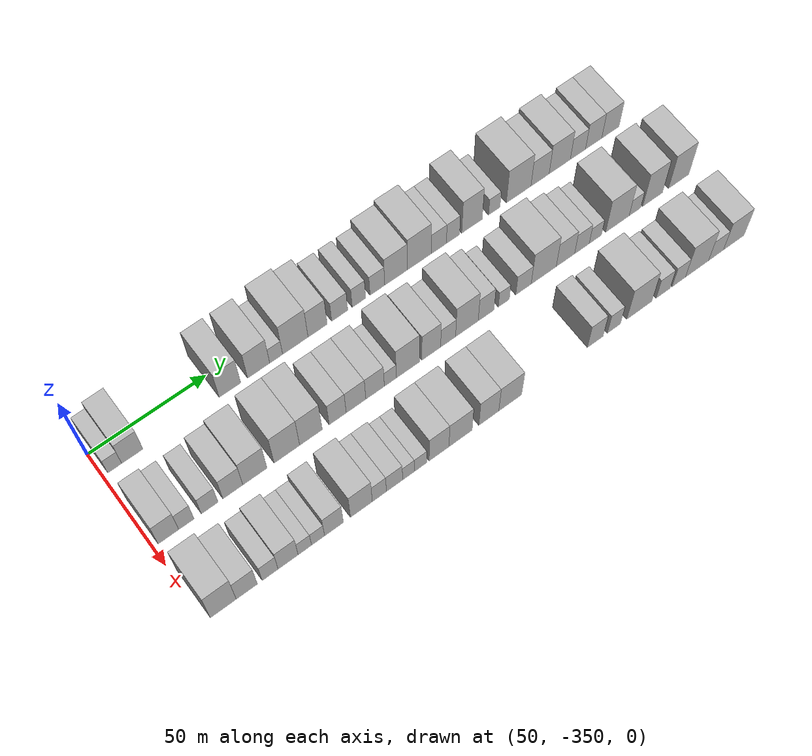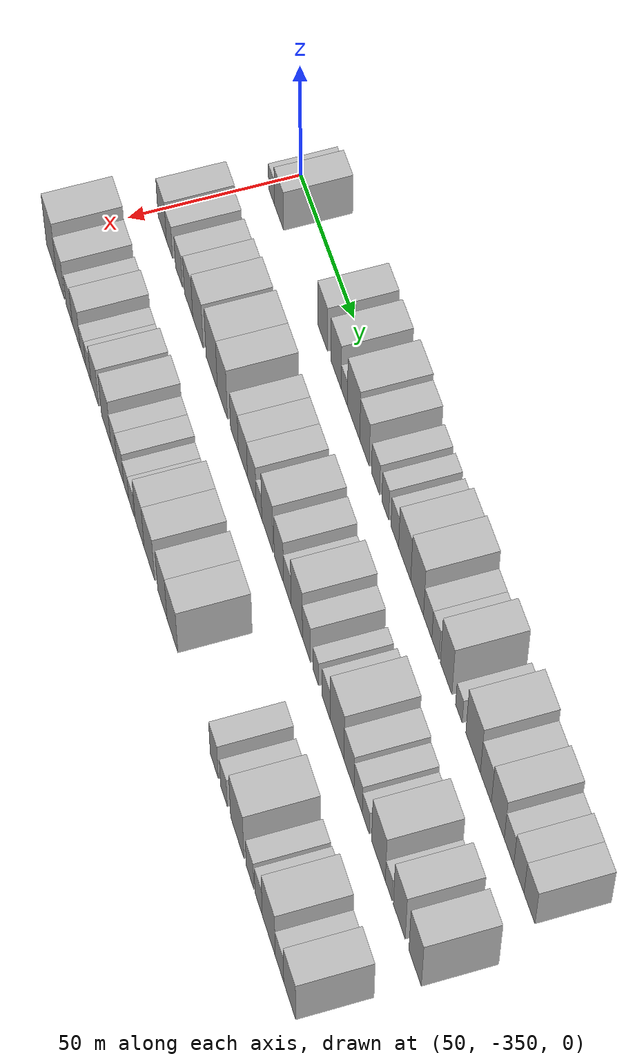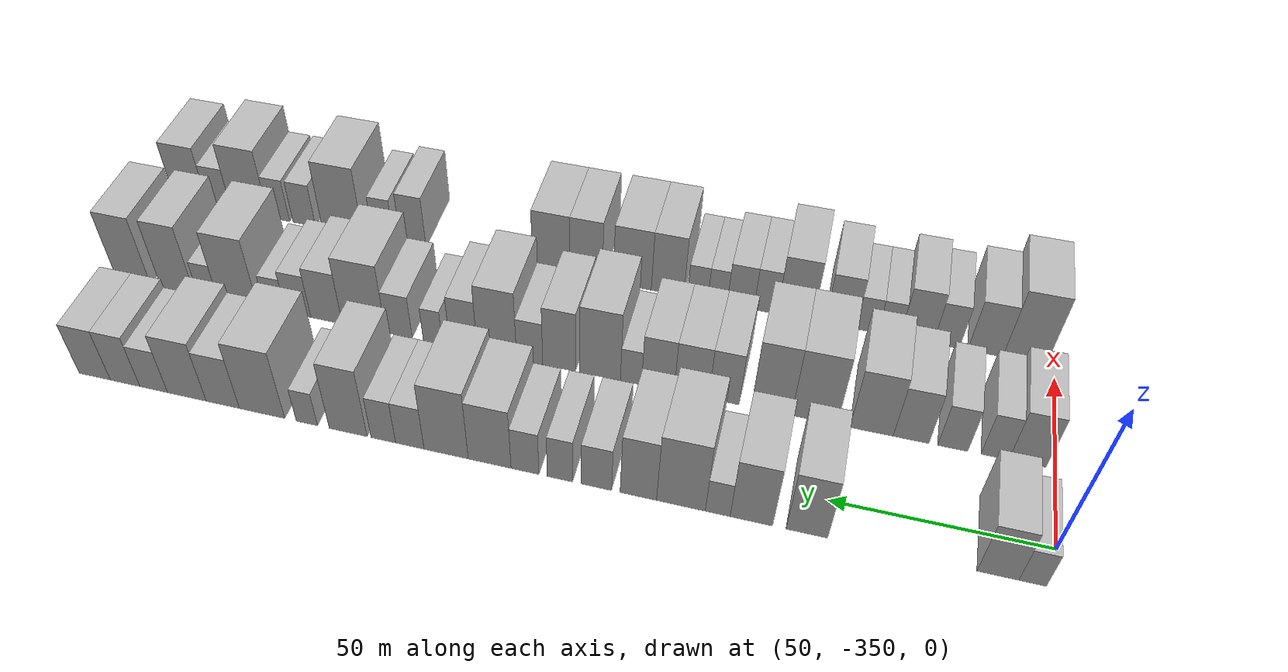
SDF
<sdf version="1.6">
 <world name="default">
  <model name="building_1">
   <static>1</static>
   <pose>50.0000 -345.1191 0 0.000000 0.000000 0.000000</pose>
   <link name="link">
    <pose>0 0 6.00 0 0 0</pose>
    <collision name="collision"><geometry><box><size>20.0000 5.7618 12.0000</size></box></geometry></collision>
    <visual name="visual">
     <cast_shadows>0</cast_shadows>
     <geometry><box><size>20.0000 5.7618 12.0000</size></box></geometry>
     <material>
      <script>
       <uri>model://HANNAS_wall/materials/scripts</uri>
       <uri>model://HANNAS_wall/materials/textures</uri>
       <name>vrc/HANNAS_wall</name>
      </script>
     </material>
    </visual>
   </link>
  </model>
  <model name="building_2">
   <static>1</static>
   <pose>50.0000 -337.8096 0 0.000000 0.000000 0.000000</pose>
   <link name="link">
    <pose>0 0 9.00 0 0 0</pose>
    <collision name="collision"><geometry><box><size>20.0000 8.8573 18.0000</size></box></geometry></collision>
    <visual name="visual">
     <cast_shadows>0</cast_shadows>
     <geometry><box><size>20.0000 8.8573 18.0000</size></box></geometry>
     <material>
      <script>
       <uri>model://HANNAS_wall/materials/scripts</uri>
       <uri>model://HANNAS_wall/materials/textures</uri>
       <name>vrc/HANNAS_wall</name>
      </script>
     </material>
    </visual>
   </link>
  </model>
  <model name="building_3">
   <static>1</static>
   <pose>50.0000 -296.4634 0 0.000000 0.000000 0.000000</pose>
   <link name="link">
    <pose>0 0 10.50 0 0 0</pose>
    <collision name="collision"><geometry><box><size>20.0000 9.2784 21.0000</size></box></geometry></collision>
    <visual name="visual">
     <cast_shadows>0</cast_shadows>
     <geometry><box><size>20.0000 9.2784 21.0000</size></box></geometry>
     <material>
      <script>
       <uri>model://HANNAS_wall/materials/scripts</uri>
       <uri>model://HANNAS_wall/materials/textures</uri>
       <name>vrc/HANNAS_wall</name>
      </script>
     </material>
    </visual>
   </link>
  </model>
  <model name="building_4">
   <static>1</static>
   <pose>50.0000 -284.0095 0 0.000000 0.000000 0.000000</pose>
   <link name="link">
    <pose>0 0 10.50 0 0 0</pose>
    <collision name="collision"><geometry><box><size>20.0000 9.6294 21.0000</size></box></geometry></collision>
    <visual name="visual">
     <cast_shadows>0</cast_shadows>
     <geometry><box><size>20.0000 9.6294 21.0000</size></box></geometry>
     <material>
      <script>
       <uri>model://HANNAS_wall/materials/scripts</uri>
       <uri>model://HANNAS_wall/materials/textures</uri>
       <name>vrc/HANNAS_wall</name>
      </script>
     </material>
    </visual>
   </link>
  </model>
  <model name="building_5">
   <static>1</static>
   <pose>50.0000 -276.3685 0 0.000000 0.000000 0.000000</pose>
   <link name="link">
    <pose>0 0 6.00 0 0 0</pose>
    <collision name="collision"><geometry><box><size>20.0000 5.6524 12.0000</size></box></geometry></collision>
    <visual name="visual">
     <cast_shadows>0</cast_shadows>
     <geometry><box><size>20.0000 5.6524 12.0000</size></box></geometry>
     <material>
      <script>
       <uri>model://HANNAS_wall/materials/scripts</uri>
       <uri>model://HANNAS_wall/materials/textures</uri>
       <name>vrc/HANNAS_wall</name>
      </script>
     </material>
    </visual>
   </link>
  </model>
  <model name="building_6">
   <static>1</static>
   <pose>50.0000 -267.9154 0 0.000000 0.000000 0.000000</pose>
   <link name="link">
    <pose>0 0 12.00 0 0 0</pose>
    <collision name="collision"><geometry><box><size>20.0000 11.2537 24.0000</size></box></geometry></collision>
    <visual name="visual">
     <cast_shadows>0</cast_shadows>
     <geometry><box><size>20.0000 11.2537 24.0000</size></box></geometry>
     <material>
      <script>
       <uri>model://HANNAS_wall/materials/scripts</uri>
       <uri>model://HANNAS_wall/materials/textures</uri>
       <name>vrc/HANNAS_wall</name>
      </script>
     </material>
    </visual>
   </link>
  </model>
  <model name="building_7">
   <static>1</static>
   <pose>50.0000 -258.0364 0 0.000000 0.000000 0.000000</pose>
   <link name="link">
    <pose>0 0 10.50 0 0 0</pose>
    <collision name="collision"><geometry><box><size>20.0000 8.5043 21.0000</size></box></geometry></collision>
    <visual name="visual">
     <cast_shadows>0</cast_shadows>
     <geometry><box><size>20.0000 8.5043 21.0000</size></box></geometry>
     <material>
      <script>
       <uri>model://HANNAS_wall/materials/scripts</uri>
       <uri>model://HANNAS_wall/materials/textures</uri>
       <name>vrc/HANNAS_wall</name>
      </script>
     </material>
    </visual>
   </link>
  </model>
  <model name="building_8">
   <static>1</static>
   <pose>50.0000 -248.1728 0 0.000000 0.000000 0.000000</pose>
   <link name="link">
    <pose>0 0 7.50 0 0 0</pose>
    <collision name="collision"><geometry><box><size>20.0000 7.2229 15.0000</size></box></geometry></collision>
    <visual name="visual">
     <cast_shadows>0</cast_shadows>
     <geometry><box><size>20.0000 7.2229 15.0000</size></box></geometry>
     <material>
      <script>
       <uri>model://HANNAS_wall/materials/scripts</uri>
       <uri>model://HANNAS_wall/materials/textures</uri>
       <name>vrc/HANNAS_wall</name>
      </script>
     </material>
    </visual>
   </link>
  </model>
  <model name="building_9">
   <static>1</static>
   <pose>50.0000 -239.5323 0 0.000000 0.000000 0.000000</pose>
   <link name="link">
    <pose>0 0 7.50 0 0 0</pose>
    <collision name="collision"><geometry><box><size>20.0000 6.0581 15.0000</size></box></geometry></collision>
    <visual name="visual">
     <cast_shadows>0</cast_shadows>
     <geometry><box><size>20.0000 6.0581 15.0000</size></box></geometry>
     <material>
      <script>
       <uri>model://HANNAS_wall/materials/scripts</uri>
       <uri>model://HANNAS_wall/materials/textures</uri>
       <name>vrc/HANNAS_wall</name>
      </script>
     </material>
    </visual>
   </link>
  </model>
  <model name="building_10">
   <static>1</static>
   <pose>50.0000 -231.1441 0 0.000000 0.000000 0.000000</pose>
   <link name="link">
    <pose>0 0 7.50 0 0 0</pose>
    <collision name="collision"><geometry><box><size>20.0000 6.7183 15.0000</size></box></geometry></collision>
    <visual name="visual">
     <cast_shadows>0</cast_shadows>
     <geometry><box><size>20.0000 6.7183 15.0000</size></box></geometry>
     <material>
      <script>
       <uri>model://HANNAS_wall/materials/scripts</uri>
       <uri>model://HANNAS_wall/materials/textures</uri>
       <name>vrc/HANNAS_wall</name>
      </script>
     </material>
    </visual>
   </link>
  </model>
  <model name="building_11">
   <static>1</static>
   <pose>50.0000 -222.5589 0 0.000000 0.000000 0.000000</pose>
   <link name="link">
    <pose>0 0 10.50 0 0 0</pose>
    <collision name="collision"><geometry><box><size>20.0000 10.4522 21.0000</size></box></geometry></collision>
    <visual name="visual">
     <cast_shadows>0</cast_shadows>
     <geometry><box><size>20.0000 10.4522 21.0000</size></box></geometry>
     <material>
      <script>
       <uri>model://HANNAS_wall/materials/scripts</uri>
       <uri>model://HANNAS_wall/materials/textures</uri>
       <name>vrc/HANNAS_wall</name>
      </script>
     </material>
    </visual>
   </link>
  </model>
  <model name="building_12">
   <static>1</static>
   <pose>50.0000 -211.8598 0 0.000000 0.000000 0.000000</pose>
   <link name="link">
    <pose>0 0 12.00 0 0 0</pose>
    <collision name="collision"><geometry><box><size>20.0000 10.9460 24.0000</size></box></geometry></collision>
    <visual name="visual">
     <cast_shadows>0</cast_shadows>
     <geometry><box><size>20.0000 10.9460 24.0000</size></box></geometry>
     <material>
      <script>
       <uri>model://HANNAS_wall/materials/scripts</uri>
       <uri>model://HANNAS_wall/materials/textures</uri>
       <name>vrc/HANNAS_wall</name>
      </script>
     </material>
    </visual>
   </link>
  </model>
  <model name="building_13">
   <static>1</static>
   <pose>50.0000 -202.8306 0 0.000000 0.000000 0.000000</pose>
   <link name="link">
    <pose>0 0 7.50 0 0 0</pose>
    <collision name="collision"><geometry><box><size>20.0000 7.1125 15.0000</size></box></geometry></collision>
    <visual name="visual">
     <cast_shadows>0</cast_shadows>
     <geometry><box><size>20.0000 7.1125 15.0000</size></box></geometry>
     <material>
      <script>
       <uri>model://HANNAS_wall/materials/scripts</uri>
       <uri>model://HANNAS_wall/materials/textures</uri>
       <name>vrc/HANNAS_wall</name>
      </script>
     </material>
    </visual>
   </link>
  </model>
  <model name="building_14">
   <static>1</static>
   <pose>50.0000 -196.1924 0 0.000000 0.000000 0.000000</pose>
   <link name="link">
    <pose>0 0 7.50 0 0 0</pose>
    <collision name="collision"><geometry><box><size>20.0000 6.1640 15.0000</size></box></geometry></collision>
    <visual name="visual">
     <cast_shadows>0</cast_shadows>
     <geometry><box><size>20.0000 6.1640 15.0000</size></box></geometry>
     <material>
      <script>
       <uri>model://HANNAS_wall/materials/scripts</uri>
       <uri>model://HANNAS_wall/materials/textures</uri>
       <name>vrc/HANNAS_wall</name>
      </script>
     </material>
    </visual>
   </link>
  </model>
  <model name="building_15">
   <static>1</static>
   <pose>50.0000 -187.2749 0 0.000000 0.000000 0.000000</pose>
   <link name="link">
    <pose>0 0 12.00 0 0 0</pose>
    <collision name="collision"><geometry><box><size>20.0000 9.6709 24.0000</size></box></geometry></collision>
    <visual name="visual">
     <cast_shadows>0</cast_shadows>
     <geometry><box><size>20.0000 9.6709 24.0000</size></box></geometry>
     <material>
      <script>
       <uri>model://HANNAS_wall/materials/scripts</uri>
       <uri>model://HANNAS_wall/materials/textures</uri>
       <name>vrc/HANNAS_wall</name>
      </script>
     </material>
    </visual>
   </link>
  </model>
  <model name="building_16">
   <static>1</static>
   <pose>50.0000 -176.7070 0 0.000000 0.000000 0.000000</pose>
   <link name="link">
    <pose>0 0 6.00 0 0 0</pose>
    <collision name="collision"><geometry><box><size>20.0000 5.4650 12.0000</size></box></geometry></collision>
    <visual name="visual">
     <cast_shadows>0</cast_shadows>
     <geometry><box><size>20.0000 5.4650 12.0000</size></box></geometry>
     <material>
      <script>
       <uri>model://HANNAS_wall/materials/scripts</uri>
       <uri>model://HANNAS_wall/materials/textures</uri>
       <name>vrc/HANNAS_wall</name>
      </script>
     </material>
    </visual>
   </link>
  </model>
  <model name="building_17">
   <static>1</static>
   <pose>50.0000 -165.0392 0 0.000000 0.000000 0.000000</pose>
   <link name="link">
    <pose>0 0 12.00 0 0 0</pose>
    <collision name="collision"><geometry><box><size>20.0000 11.8706 24.0000</size></box></geometry></collision>
    <visual name="visual">
     <cast_shadows>0</cast_shadows>
     <geometry><box><size>20.0000 11.8706 24.0000</size></box></geometry>
     <material>
      <script>
       <uri>model://HANNAS_wall/materials/scripts</uri>
       <uri>model://HANNAS_wall/materials/textures</uri>
       <name>vrc/HANNAS_wall</name>
      </script>
     </material>
    </visual>
   </link>
  </model>
  <model name="building_18">
   <static>1</static>
   <pose>50.0000 -154.6894 0 0.000000 0.000000 0.000000</pose>
   <link name="link">
    <pose>0 0 9.00 0 0 0</pose>
    <collision name="collision"><geometry><box><size>20.0000 8.8291 18.0000</size></box></geometry></collision>
    <visual name="visual">
     <cast_shadows>0</cast_shadows>
     <geometry><box><size>20.0000 8.8291 18.0000</size></box></geometry>
     <material>
      <script>
       <uri>model://HANNAS_wall/materials/scripts</uri>
       <uri>model://HANNAS_wall/materials/textures</uri>
       <name>vrc/HANNAS_wall</name>
      </script>
     </material>
    </visual>
   </link>
  </model>
  <model name="building_19">
   <static>1</static>
   <pose>50.0000 -145.1029 0 0.000000 0.000000 0.000000</pose>
   <link name="link">
    <pose>0 0 10.50 0 0 0</pose>
    <collision name="collision"><geometry><box><size>20.0000 10.3438 21.0000</size></box></geometry></collision>
    <visual name="visual">
     <cast_shadows>0</cast_shadows>
     <geometry><box><size>20.0000 10.3438 21.0000</size></box></geometry>
     <material>
      <script>
       <uri>model://HANNAS_wall/materials/scripts</uri>
       <uri>model://HANNAS_wall/materials/textures</uri>
       <name>vrc/HANNAS_wall</name>
      </script>
     </material>
    </visual>
   </link>
  </model>
  <model name="building_20">
   <static>1</static>
   <pose>50.0000 -136.1869 0 0.000000 0.000000 0.000000</pose>
   <link name="link">
    <pose>0 0 7.50 0 0 0</pose>
    <collision name="collision"><geometry><box><size>20.0000 7.4882 15.0000</size></box></geometry></collision>
    <visual name="visual">
     <cast_shadows>0</cast_shadows>
     <geometry><box><size>20.0000 7.4882 15.0000</size></box></geometry>
     <material>
      <script>
       <uri>model://HANNAS_wall/materials/scripts</uri>
       <uri>model://HANNAS_wall/materials/textures</uri>
       <name>vrc/HANNAS_wall</name>
      </script>
     </material>
    </visual>
   </link>
  </model>
  <model name="building_21">
   <static>1</static>
   <pose>50.0000 -128.4151 0 0.000000 0.000000 0.000000</pose>
   <link name="link">
    <pose>0 0 9.00 0 0 0</pose>
    <collision name="collision"><geometry><box><size>20.0000 8.0554 18.0000</size></box></geometry></collision>
    <visual name="visual">
     <cast_shadows>0</cast_shadows>
     <geometry><box><size>20.0000 8.0554 18.0000</size></box></geometry>
     <material>
      <script>
       <uri>model://HANNAS_wall/materials/scripts</uri>
       <uri>model://HANNAS_wall/materials/textures</uri>
       <name>vrc/HANNAS_wall</name>
      </script>
     </material>
    </visual>
   </link>
  </model>
  <model name="building_22">
   <static>1</static>
   <pose>50.0000 -120.0876 0 0.000000 0.000000 0.000000</pose>
   <link name="link">
    <pose>0 0 9.00 0 0 0</pose>
    <collision name="collision"><geometry><box><size>20.0000 8.5995 18.0000</size></box></geometry></collision>
    <visual name="visual">
     <cast_shadows>0</cast_shadows>
     <geometry><box><size>20.0000 8.5995 18.0000</size></box></geometry>
     <material>
      <script>
       <uri>model://HANNAS_wall/materials/scripts</uri>
       <uri>model://HANNAS_wall/materials/textures</uri>
       <name>vrc/HANNAS_wall</name>
      </script>
     </material>
    </visual>
   </link>
  </model>
  <model name="building_65">
   <static>1</static>
   <pose>82.0000 -343.7660 0 0.000000 0.000000 0.000000</pose>
   <link name="link">
    <pose>0 0 9.00 0 0 0</pose>
    <collision name="collision"><geometry><box><size>20.0000 8.4680 18.0000</size></box></geometry></collision>
    <visual name="visual">
     <cast_shadows>0</cast_shadows>
     <geometry><box><size>20.0000 8.4680 18.0000</size></box></geometry>
     <material>
      <script>
       <uri>model://HANNAS_wall/materials/scripts</uri>
       <uri>model://HANNAS_wall/materials/textures</uri>
       <name>vrc/HANNAS_wall</name>
      </script>
     </material>
    </visual>
   </link>
  </model>
  <model name="building_66">
   <static>1</static>
   <pose>82.0000 -336.3642 0 0.000000 0.000000 0.000000</pose>
   <link name="link">
    <pose>0 0 7.50 0 0 0</pose>
    <collision name="collision"><geometry><box><size>20.0000 6.3355 15.0000</size></box></geometry></collision>
    <visual name="visual">
     <cast_shadows>0</cast_shadows>
     <geometry><box><size>20.0000 6.3355 15.0000</size></box></geometry>
     <material>
      <script>
       <uri>model://HANNAS_wall/materials/scripts</uri>
       <uri>model://HANNAS_wall/materials/textures</uri>
       <name>vrc/HANNAS_wall</name>
      </script>
     </material>
    </visual>
   </link>
  </model>
  <model name="building_67">
   <static>1</static>
   <pose>82.0000 -326.7065 0 0.000000 0.000000 0.000000</pose>
   <link name="link">
    <pose>0 0 7.50 0 0 0</pose>
    <collision name="collision"><geometry><box><size>20.0000 6.9799 15.0000</size></box></geometry></collision>
    <visual name="visual">
     <cast_shadows>0</cast_shadows>
     <geometry><box><size>20.0000 6.9799 15.0000</size></box></geometry>
     <material>
      <script>
       <uri>model://HANNAS_wall/materials/scripts</uri>
       <uri>model://HANNAS_wall/materials/textures</uri>
       <name>vrc/HANNAS_wall</name>
      </script>
     </material>
    </visual>
   </link>
  </model>
  <model name="building_68">
   <static>1</static>
   <pose>82.0000 -317.0412 0 0.000000 0.000000 0.000000</pose>
   <link name="link">
    <pose>0 0 9.00 0 0 0</pose>
    <collision name="collision"><geometry><box><size>20.0000 8.3508 18.0000</size></box></geometry></collision>
    <visual name="visual">
     <cast_shadows>0</cast_shadows>
     <geometry><box><size>20.0000 8.3508 18.0000</size></box></geometry>
     <material>
      <script>
       <uri>model://HANNAS_wall/materials/scripts</uri>
       <uri>model://HANNAS_wall/materials/textures</uri>
       <name>vrc/HANNAS_wall</name>
      </script>
     </material>
    </visual>
   </link>
  </model>
  <model name="building_69">
   <static>1</static>
   <pose>82.0000 -307.7425 0 0.000000 0.000000 0.000000</pose>
   <link name="link">
    <pose>0 0 10.50 0 0 0</pose>
    <collision name="collision"><geometry><box><size>20.0000 10.2467 21.0000</size></box></geometry></collision>
    <visual name="visual">
     <cast_shadows>0</cast_shadows>
     <geometry><box><size>20.0000 10.2467 21.0000</size></box></geometry>
     <material>
      <script>
       <uri>model://HANNAS_wall/materials/scripts</uri>
       <uri>model://HANNAS_wall/materials/textures</uri>
       <name>vrc/HANNAS_wall</name>
      </script>
     </material>
    </visual>
   </link>
  </model>
  <model name="building_70">
   <static>1</static>
   <pose>82.0000 -294.1219 0 0.000000 0.000000 0.000000</pose>
   <link name="link">
    <pose>0 0 12.00 0 0 0</pose>
    <collision name="collision"><geometry><box><size>20.0000 10.9944 24.0000</size></box></geometry></collision>
    <visual name="visual">
     <cast_shadows>0</cast_shadows>
     <geometry><box><size>20.0000 10.9944 24.0000</size></box></geometry>
     <material>
      <script>
       <uri>model://HANNAS_wall/materials/scripts</uri>
       <uri>model://HANNAS_wall/materials/textures</uri>
       <name>vrc/HANNAS_wall</name>
      </script>
     </material>
    </visual>
   </link>
  </model>
  <model name="building_71">
   <static>1</static>
   <pose>82.0000 -283.7577 0 0.000000 0.000000 0.000000</pose>
   <link name="link">
    <pose>0 0 12.00 0 0 0</pose>
    <collision name="collision"><geometry><box><size>20.0000 9.7341 24.0000</size></box></geometry></collision>
    <visual name="visual">
     <cast_shadows>0</cast_shadows>
     <geometry><box><size>20.0000 9.7341 24.0000</size></box></geometry>
     <material>
      <script>
       <uri>model://HANNAS_wall/materials/scripts</uri>
       <uri>model://HANNAS_wall/materials/textures</uri>
       <name>vrc/HANNAS_wall</name>
      </script>
     </material>
    </visual>
   </link>
  </model>
  <model name="building_72">
   <static>1</static>
   <pose>82.0000 -272.1636 0 0.000000 0.000000 0.000000</pose>
   <link name="link">
    <pose>0 0 9.00 0 0 0</pose>
    <collision name="collision"><geometry><box><size>20.0000 7.4541 18.0000</size></box></geometry></collision>
    <visual name="visual">
     <cast_shadows>0</cast_shadows>
     <geometry><box><size>20.0000 7.4541 18.0000</size></box></geometry>
     <material>
      <script>
       <uri>model://HANNAS_wall/materials/scripts</uri>
       <uri>model://HANNAS_wall/materials/textures</uri>
       <name>vrc/HANNAS_wall</name>
      </script>
     </material>
    </visual>
   </link>
  </model>
  <model name="building_73">
   <static>1</static>
   <pose>82.0000 -264.1313 0 0.000000 0.000000 0.000000</pose>
   <link name="link">
    <pose>0 0 9.00 0 0 0</pose>
    <collision name="collision"><geometry><box><size>20.0000 8.6106 18.0000</size></box></geometry></collision>
    <visual name="visual">
     <cast_shadows>0</cast_shadows>
     <geometry><box><size>20.0000 8.6106 18.0000</size></box></geometry>
     <material>
      <script>
       <uri>model://HANNAS_wall/materials/scripts</uri>
       <uri>model://HANNAS_wall/materials/textures</uri>
       <name>vrc/HANNAS_wall</name>
      </script>
     </material>
    </visual>
   </link>
  </model>
  <model name="building_74">
   <static>1</static>
   <pose>82.0000 -255.7313 0 0.000000 0.000000 0.000000</pose>
   <link name="link">
    <pose>0 0 9.00 0 0 0</pose>
    <collision name="collision"><geometry><box><size>20.0000 8.1895 18.0000</size></box></geometry></collision>
    <visual name="visual">
     <cast_shadows>0</cast_shadows>
     <geometry><box><size>20.0000 8.1895 18.0000</size></box></geometry>
     <material>
      <script>
       <uri>model://HANNAS_wall/materials/scripts</uri>
       <uri>model://HANNAS_wall/materials/textures</uri>
       <name>vrc/HANNAS_wall</name>
      </script>
     </material>
    </visual>
   </link>
  </model>
  <model name="building_75">
   <static>1</static>
   <pose>82.0000 -248.9600 0 0.000000 0.000000 0.000000</pose>
   <link name="link">
    <pose>0 0 6.00 0 0 0</pose>
    <collision name="collision"><geometry><box><size>20.0000 5.3530 12.0000</size></box></geometry></collision>
    <visual name="visual">
     <cast_shadows>0</cast_shadows>
     <geometry><box><size>20.0000 5.3530 12.0000</size></box></geometry>
     <material>
      <script>
       <uri>model://HANNAS_wall/materials/scripts</uri>
       <uri>model://HANNAS_wall/materials/textures</uri>
       <name>vrc/HANNAS_wall</name>
      </script>
     </material>
    </visual>
   </link>
  </model>
  <model name="building_76">
   <static>1</static>
   <pose>82.0000 -241.0611 0 0.000000 0.000000 0.000000</pose>
   <link name="link">
    <pose>0 0 12.00 0 0 0</pose>
    <collision name="collision"><geometry><box><size>20.0000 10.4449 24.0000</size></box></geometry></collision>
    <visual name="visual">
     <cast_shadows>0</cast_shadows>
     <geometry><box><size>20.0000 10.4449 24.0000</size></box></geometry>
     <material>
      <script>
       <uri>model://HANNAS_wall/materials/scripts</uri>
       <uri>model://HANNAS_wall/materials/textures</uri>
       <name>vrc/HANNAS_wall</name>
      </script>
     </material>
    </visual>
   </link>
  </model>
  <model name="building_77">
   <static>1</static>
   <pose>82.0000 -230.6010 0 0.000000 0.000000 0.000000</pose>
   <link name="link">
    <pose>0 0 10.50 0 0 0</pose>
    <collision name="collision"><geometry><box><size>20.0000 8.4752 21.0000</size></box></geometry></collision>
    <visual name="visual">
     <cast_shadows>0</cast_shadows>
     <geometry><box><size>20.0000 8.4752 21.0000</size></box></geometry>
     <material>
      <script>
       <uri>model://HANNAS_wall/materials/scripts</uri>
       <uri>model://HANNAS_wall/materials/textures</uri>
       <name>vrc/HANNAS_wall</name>
      </script>
     </material>
    </visual>
   </link>
  </model>
  <model name="building_78">
   <static>1</static>
   <pose>82.0000 -222.9612 0 0.000000 0.000000 0.000000</pose>
   <link name="link">
    <pose>0 0 7.50 0 0 0</pose>
    <collision name="collision"><geometry><box><size>20.0000 6.8045 15.0000</size></box></geometry></collision>
    <visual name="visual">
     <cast_shadows>0</cast_shadows>
     <geometry><box><size>20.0000 6.8045 15.0000</size></box></geometry>
     <material>
      <script>
       <uri>model://HANNAS_wall/materials/scripts</uri>
       <uri>model://HANNAS_wall/materials/textures</uri>
       <name>vrc/HANNAS_wall</name>
      </script>
     </material>
    </visual>
   </link>
  </model>
  <model name="building_79">
   <static>1</static>
   <pose>82.0000 -214.3884 0 0.000000 0.000000 0.000000</pose>
   <link name="link">
    <pose>0 0 12.00 0 0 0</pose>
    <collision name="collision"><geometry><box><size>20.0000 10.3412 24.0000</size></box></geometry></collision>
    <visual name="visual">
     <cast_shadows>0</cast_shadows>
     <geometry><box><size>20.0000 10.3412 24.0000</size></box></geometry>
     <material>
      <script>
       <uri>model://HANNAS_wall/materials/scripts</uri>
       <uri>model://HANNAS_wall/materials/textures</uri>
       <name>vrc/HANNAS_wall</name>
      </script>
     </material>
    </visual>
   </link>
  </model>
  <model name="building_80">
   <static>1</static>
   <pose>82.0000 -205.5677 0 0.000000 0.000000 0.000000</pose>
   <link name="link">
    <pose>0 0 9.00 0 0 0</pose>
    <collision name="collision"><geometry><box><size>20.0000 7.3002 18.0000</size></box></geometry></collision>
    <visual name="visual">
     <cast_shadows>0</cast_shadows>
     <geometry><box><size>20.0000 7.3002 18.0000</size></box></geometry>
     <material>
      <script>
       <uri>model://HANNAS_wall/materials/scripts</uri>
       <uri>model://HANNAS_wall/materials/textures</uri>
       <name>vrc/HANNAS_wall</name>
      </script>
     </material>
    </visual>
   </link>
  </model>
  <model name="building_81">
   <static>1</static>
   <pose>82.0000 -197.3624 0 0.000000 0.000000 0.000000</pose>
   <link name="link">
    <pose>0 0 6.00 0 0 0</pose>
    <collision name="collision"><geometry><box><size>20.0000 5.1103 12.0000</size></box></geometry></collision>
    <visual name="visual">
     <cast_shadows>0</cast_shadows>
     <geometry><box><size>20.0000 5.1103 12.0000</size></box></geometry>
     <material>
      <script>
       <uri>model://HANNAS_wall/materials/scripts</uri>
       <uri>model://HANNAS_wall/materials/textures</uri>
       <name>vrc/HANNAS_wall</name>
      </script>
     </material>
    </visual>
   </link>
  </model>
  <model name="building_82">
   <static>1</static>
   <pose>82.0000 -188.2093 0 0.000000 0.000000 0.000000</pose>
   <link name="link">
    <pose>0 0 7.50 0 0 0</pose>
    <collision name="collision"><geometry><box><size>20.0000 7.1959 15.0000</size></box></geometry></collision>
    <visual name="visual">
     <cast_shadows>0</cast_shadows>
     <geometry><box><size>20.0000 7.1959 15.0000</size></box></geometry>
     <material>
      <script>
       <uri>model://HANNAS_wall/materials/scripts</uri>
       <uri>model://HANNAS_wall/materials/textures</uri>
       <name>vrc/HANNAS_wall</name>
      </script>
     </material>
    </visual>
   </link>
  </model>
  <model name="building_83">
   <static>1</static>
   <pose>82.0000 -178.6622 0 0.000000 0.000000 0.000000</pose>
   <link name="link">
    <pose>0 0 12.00 0 0 0</pose>
    <collision name="collision"><geometry><box><size>20.0000 11.8983 24.0000</size></box></geometry></collision>
    <visual name="visual">
     <cast_shadows>0</cast_shadows>
     <geometry><box><size>20.0000 11.8983 24.0000</size></box></geometry>
     <material>
      <script>
       <uri>model://HANNAS_wall/materials/scripts</uri>
       <uri>model://HANNAS_wall/materials/textures</uri>
       <name>vrc/HANNAS_wall</name>
      </script>
     </material>
    </visual>
   </link>
  </model>
  <model name="building_84">
   <static>1</static>
   <pose>82.0000 -168.3595 0 0.000000 0.000000 0.000000</pose>
   <link name="link">
    <pose>0 0 9.00 0 0 0</pose>
    <collision name="collision"><geometry><box><size>20.0000 8.7071 18.0000</size></box></geometry></collision>
    <visual name="visual">
     <cast_shadows>0</cast_shadows>
     <geometry><box><size>20.0000 8.7071 18.0000</size></box></geometry>
     <material>
      <script>
       <uri>model://HANNAS_wall/materials/scripts</uri>
       <uri>model://HANNAS_wall/materials/textures</uri>
       <name>vrc/HANNAS_wall</name>
      </script>
     </material>
    </visual>
   </link>
  </model>
  <model name="building_85">
   <static>1</static>
   <pose>82.0000 -160.4917 0 0.000000 0.000000 0.000000</pose>
   <link name="link">
    <pose>0 0 7.50 0 0 0</pose>
    <collision name="collision"><geometry><box><size>20.0000 7.0284 15.0000</size></box></geometry></collision>
    <visual name="visual">
     <cast_shadows>0</cast_shadows>
     <geometry><box><size>20.0000 7.0284 15.0000</size></box></geometry>
     <material>
      <script>
       <uri>model://HANNAS_wall/materials/scripts</uri>
       <uri>model://HANNAS_wall/materials/textures</uri>
       <name>vrc/HANNAS_wall</name>
      </script>
     </material>
    </visual>
   </link>
  </model>
  <model name="building_86">
   <static>1</static>
   <pose>82.0000 -154.0191 0 0.000000 0.000000 0.000000</pose>
   <link name="link">
    <pose>0 0 6.00 0 0 0</pose>
    <collision name="collision"><geometry><box><size>20.0000 5.9168 12.0000</size></box></geometry></collision>
    <visual name="visual">
     <cast_shadows>0</cast_shadows>
     <geometry><box><size>20.0000 5.9168 12.0000</size></box></geometry>
     <material>
      <script>
       <uri>model://HANNAS_wall/materials/scripts</uri>
       <uri>model://HANNAS_wall/materials/textures</uri>
       <name>vrc/HANNAS_wall</name>
      </script>
     </material>
    </visual>
   </link>
  </model>
  <model name="building_87">
   <static>1</static>
   <pose>82.0000 -143.3296 0 0.000000 0.000000 0.000000</pose>
   <link name="link">
    <pose>0 0 12.00 0 0 0</pose>
    <collision name="collision"><geometry><box><size>20.0000 11.4623 24.0000</size></box></geometry></collision>
    <visual name="visual">
     <cast_shadows>0</cast_shadows>
     <geometry><box><size>20.0000 11.4623 24.0000</size></box></geometry>
     <material>
      <script>
       <uri>model://HANNAS_wall/materials/scripts</uri>
       <uri>model://HANNAS_wall/materials/textures</uri>
       <name>vrc/HANNAS_wall</name>
      </script>
     </material>
    </visual>
   </link>
  </model>
  <model name="building_88">
   <static>1</static>
   <pose>82.0000 -134.7761 0 0.000000 0.000000 0.000000</pose>
   <link name="link">
    <pose>0 0 6.00 0 0 0</pose>
    <collision name="collision"><geometry><box><size>20.0000 5.6447 12.0000</size></box></geometry></collision>
    <visual name="visual">
     <cast_shadows>0</cast_shadows>
     <geometry><box><size>20.0000 5.6447 12.0000</size></box></geometry>
     <material>
      <script>
       <uri>model://HANNAS_wall/materials/scripts</uri>
       <uri>model://HANNAS_wall/materials/textures</uri>
       <name>vrc/HANNAS_wall</name>
      </script>
     </material>
    </visual>
   </link>
  </model>
  <model name="building_89">
   <static>1</static>
   <pose>82.0000 -126.0806 0 0.000000 0.000000 0.000000</pose>
   <link name="link">
    <pose>0 0 12.00 0 0 0</pose>
    <collision name="collision"><geometry><box><size>20.0000 9.7463 24.0000</size></box></geometry></collision>
    <visual name="visual">
     <cast_shadows>0</cast_shadows>
     <geometry><box><size>20.0000 9.7463 24.0000</size></box></geometry>
     <material>
      <script>
       <uri>model://HANNAS_wall/materials/scripts</uri>
       <uri>model://HANNAS_wall/materials/textures</uri>
       <name>vrc/HANNAS_wall</name>
      </script>
     </material>
    </visual>
   </link>
  </model>
  <model name="building_90">
   <static>1</static>
   <pose>82.0000 -113.1673 0 0.000000 0.000000 0.000000</pose>
   <link name="link">
    <pose>0 0 12.00 0 0 0</pose>
    <collision name="collision"><geometry><box><size>20.0000 10.0804 24.0000</size></box></geometry></collision>
    <visual name="visual">
     <cast_shadows>0</cast_shadows>
     <geometry><box><size>20.0000 10.0804 24.0000</size></box></geometry>
     <material>
      <script>
       <uri>model://HANNAS_wall/materials/scripts</uri>
       <uri>model://HANNAS_wall/materials/textures</uri>
       <name>vrc/HANNAS_wall</name>
      </script>
     </material>
    </visual>
   </link>
  </model>
  <model name="building_139">
   <static>1</static>
   <pose>114.0000 -342.7284 0 0.000000 0.000000 0.000000</pose>
   <link name="link">
    <pose>0 0 12.00 0 0 0</pose>
    <collision name="collision"><geometry><box><size>20.0000 10.5433 24.0000</size></box></geometry></collision>
    <visual name="visual">
     <cast_shadows>0</cast_shadows>
     <geometry><box><size>20.0000 10.5433 24.0000</size></box></geometry>
     <material>
      <script>
       <uri>model://HANNAS_wall/materials/scripts</uri>
       <uri>model://HANNAS_wall/materials/textures</uri>
       <name>vrc/HANNAS_wall</name>
      </script>
     </material>
    </visual>
   </link>
  </model>
  <model name="building_140">
   <static>1</static>
   <pose>114.0000 -333.1309 0 0.000000 0.000000 0.000000</pose>
   <link name="link">
    <pose>0 0 9.00 0 0 0</pose>
    <collision name="collision"><geometry><box><size>20.0000 8.6516 18.0000</size></box></geometry></collision>
    <visual name="visual">
     <cast_shadows>0</cast_shadows>
     <geometry><box><size>20.0000 8.6516 18.0000</size></box></geometry>
     <material>
      <script>
       <uri>model://HANNAS_wall/materials/scripts</uri>
       <uri>model://HANNAS_wall/materials/textures</uri>
       <name>vrc/HANNAS_wall</name>
      </script>
     </material>
    </visual>
   </link>
  </model>
  <model name="building_141">
   <static>1</static>
   <pose>114.0000 -323.5245 0 0.000000 0.000000 0.000000</pose>
   <link name="link">
    <pose>0 0 7.50 0 0 0</pose>
    <collision name="collision"><geometry><box><size>20.0000 6.5612 15.0000</size></box></geometry></collision>
    <visual name="visual">
     <cast_shadows>0</cast_shadows>
     <geometry><box><size>20.0000 6.5612 15.0000</size></box></geometry>
     <material>
      <script>
       <uri>model://HANNAS_wall/materials/scripts</uri>
       <uri>model://HANNAS_wall/materials/textures</uri>
       <name>vrc/HANNAS_wall</name>
      </script>
     </material>
    </visual>
   </link>
  </model>
  <model name="building_142">
   <static>1</static>
   <pose>114.0000 -316.0849 0 0.000000 0.000000 0.000000</pose>
   <link name="link">
    <pose>0 0 9.00 0 0 0</pose>
    <collision name="collision"><geometry><box><size>20.0000 8.3180 18.0000</size></box></geometry></collision>
    <visual name="visual">
     <cast_shadows>0</cast_shadows>
     <geometry><box><size>20.0000 8.3180 18.0000</size></box></geometry>
     <material>
      <script>
       <uri>model://HANNAS_wall/materials/scripts</uri>
       <uri>model://HANNAS_wall/materials/textures</uri>
       <name>vrc/HANNAS_wall</name>
      </script>
     </material>
    </visual>
   </link>
  </model>
  <model name="building_143">
   <static>1</static>
   <pose>114.0000 -309.1083 0 0.000000 0.000000 0.000000</pose>
   <link name="link">
    <pose>0 0 6.00 0 0 0</pose>
    <collision name="collision"><geometry><box><size>20.0000 5.6353 12.0000</size></box></geometry></collision>
    <visual name="visual">
     <cast_shadows>0</cast_shadows>
     <geometry><box><size>20.0000 5.6353 12.0000</size></box></geometry>
     <material>
      <script>
       <uri>model://HANNAS_wall/materials/scripts</uri>
       <uri>model://HANNAS_wall/materials/textures</uri>
       <name>vrc/HANNAS_wall</name>
      </script>
     </material>
    </visual>
   </link>
  </model>
  <model name="building_144">
   <static>1</static>
   <pose>114.0000 -303.5364 0 0.000000 0.000000 0.000000</pose>
   <link name="link">
    <pose>0 0 6.00 0 0 0</pose>
    <collision name="collision"><geometry><box><size>20.0000 5.5086 12.0000</size></box></geometry></collision>
    <visual name="visual">
     <cast_shadows>0</cast_shadows>
     <geometry><box><size>20.0000 5.5086 12.0000</size></box></geometry>
     <material>
      <script>
       <uri>model://HANNAS_wall/materials/scripts</uri>
       <uri>model://HANNAS_wall/materials/textures</uri>
       <name>vrc/HANNAS_wall</name>
      </script>
     </material>
    </visual>
   </link>
  </model>
  <model name="building_145">
   <static>1</static>
   <pose>114.0000 -296.8073 0 0.000000 0.000000 0.000000</pose>
   <link name="link">
    <pose>0 0 9.00 0 0 0</pose>
    <collision name="collision"><geometry><box><size>20.0000 7.9496 18.0000</size></box></geometry></collision>
    <visual name="visual">
     <cast_shadows>0</cast_shadows>
     <geometry><box><size>20.0000 7.9496 18.0000</size></box></geometry>
     <material>
      <script>
       <uri>model://HANNAS_wall/materials/scripts</uri>
       <uri>model://HANNAS_wall/materials/textures</uri>
       <name>vrc/HANNAS_wall</name>
      </script>
     </material>
    </visual>
   </link>
  </model>
  <model name="building_146">
   <static>1</static>
   <pose>114.0000 -285.1551 0 0.000000 0.000000 0.000000</pose>
   <link name="link">
    <pose>0 0 10.50 0 0 0</pose>
    <collision name="collision"><geometry><box><size>20.0000 9.3548 21.0000</size></box></geometry></collision>
    <visual name="visual">
     <cast_shadows>0</cast_shadows>
     <geometry><box><size>20.0000 9.3548 21.0000</size></box></geometry>
     <material>
      <script>
       <uri>model://HANNAS_wall/materials/scripts</uri>
       <uri>model://HANNAS_wall/materials/textures</uri>
       <name>vrc/HANNAS_wall</name>
      </script>
     </material>
    </visual>
   </link>
  </model>
  <model name="building_147">
   <static>1</static>
   <pose>114.0000 -277.4406 0 0.000000 0.000000 0.000000</pose>
   <link name="link">
    <pose>0 0 7.50 0 0 0</pose>
    <collision name="collision"><geometry><box><size>20.0000 6.0742 15.0000</size></box></geometry></collision>
    <visual name="visual">
     <cast_shadows>0</cast_shadows>
     <geometry><box><size>20.0000 6.0742 15.0000</size></box></geometry>
     <material>
      <script>
       <uri>model://HANNAS_wall/materials/scripts</uri>
       <uri>model://HANNAS_wall/materials/textures</uri>
       <name>vrc/HANNAS_wall</name>
      </script>
     </material>
    </visual>
   </link>
  </model>
  <model name="building_148">
   <static>1</static>
   <pose>114.0000 -270.9023 0 0.000000 0.000000 0.000000</pose>
   <link name="link">
    <pose>0 0 7.50 0 0 0</pose>
    <collision name="collision"><geometry><box><size>20.0000 7.0024 15.0000</size></box></geometry></collision>
    <visual name="visual">
     <cast_shadows>0</cast_shadows>
     <geometry><box><size>20.0000 7.0024 15.0000</size></box></geometry>
     <material>
      <script>
       <uri>model://HANNAS_wall/materials/scripts</uri>
       <uri>model://HANNAS_wall/materials/textures</uri>
       <name>vrc/HANNAS_wall</name>
      </script>
     </material>
    </visual>
   </link>
  </model>
  <model name="building_149">
   <static>1</static>
   <pose>114.0000 -264.8310 0 0.000000 0.000000 0.000000</pose>
   <link name="link">
    <pose>0 0 6.00 0 0 0</pose>
    <collision name="collision"><geometry><box><size>20.0000 5.1402 12.0000</size></box></geometry></collision>
    <visual name="visual">
     <cast_shadows>0</cast_shadows>
     <geometry><box><size>20.0000 5.1402 12.0000</size></box></geometry>
     <material>
      <script>
       <uri>model://HANNAS_wall/materials/scripts</uri>
       <uri>model://HANNAS_wall/materials/textures</uri>
       <name>vrc/HANNAS_wall</name>
      </script>
     </material>
    </visual>
   </link>
  </model>
  <model name="building_150">
   <static>1</static>
   <pose>114.0000 -259.5518 0 0.000000 0.000000 0.000000</pose>
   <link name="link">
    <pose>0 0 6.00 0 0 0</pose>
    <collision name="collision"><geometry><box><size>20.0000 5.4181 12.0000</size></box></geometry></collision>
    <visual name="visual">
     <cast_shadows>0</cast_shadows>
     <geometry><box><size>20.0000 5.4181 12.0000</size></box></geometry>
     <material>
      <script>
       <uri>model://HANNAS_wall/materials/scripts</uri>
       <uri>model://HANNAS_wall/materials/textures</uri>
       <name>vrc/HANNAS_wall</name>
      </script>
     </material>
    </visual>
   </link>
  </model>
  <model name="building_151">
   <static>1</static>
   <pose>114.0000 -251.4647 0 0.000000 0.000000 0.000000</pose>
   <link name="link">
    <pose>0 0 10.50 0 0 0</pose>
    <collision name="collision"><geometry><box><size>20.0000 8.7561 21.0000</size></box></geometry></collision>
    <visual name="visual">
     <cast_shadows>0</cast_shadows>
     <geometry><box><size>20.0000 8.7561 21.0000</size></box></geometry>
     <material>
      <script>
       <uri>model://HANNAS_wall/materials/scripts</uri>
       <uri>model://HANNAS_wall/materials/textures</uri>
       <name>vrc/HANNAS_wall</name>
      </script>
     </material>
    </visual>
   </link>
  </model>
  <model name="building_152">
   <static>1</static>
   <pose>114.0000 -241.9400 0 0.000000 0.000000 0.000000</pose>
   <link name="link">
    <pose>0 0 10.50 0 0 0</pose>
    <collision name="collision"><geometry><box><size>20.0000 10.2934 21.0000</size></box></geometry></collision>
    <visual name="visual">
     <cast_shadows>0</cast_shadows>
     <geometry><box><size>20.0000 10.2934 21.0000</size></box></geometry>
     <material>
      <script>
       <uri>model://HANNAS_wall/materials/scripts</uri>
       <uri>model://HANNAS_wall/materials/textures</uri>
       <name>vrc/HANNAS_wall</name>
      </script>
     </material>
    </visual>
   </link>
  </model>
  <model name="building_153">
   <static>1</static>
   <pose>114.0000 -229.3231 0 0.000000 0.000000 0.000000</pose>
   <link name="link">
    <pose>0 0 10.50 0 0 0</pose>
    <collision name="collision"><geometry><box><size>20.0000 8.9403 21.0000</size></box></geometry></collision>
    <visual name="visual">
     <cast_shadows>0</cast_shadows>
     <geometry><box><size>20.0000 8.9403 21.0000</size></box></geometry>
     <material>
      <script>
       <uri>model://HANNAS_wall/materials/scripts</uri>
       <uri>model://HANNAS_wall/materials/textures</uri>
       <name>vrc/HANNAS_wall</name>
      </script>
     </material>
    </visual>
   </link>
  </model>
  <model name="building_154">
   <static>1</static>
   <pose>114.0000 -219.6781 0 0.000000 0.000000 0.000000</pose>
   <link name="link">
    <pose>0 0 10.50 0 0 0</pose>
    <collision name="collision"><geometry><box><size>20.0000 10.3498 21.0000</size></box></geometry></collision>
    <visual name="visual">
     <cast_shadows>0</cast_shadows>
     <geometry><box><size>20.0000 10.3498 21.0000</size></box></geometry>
     <material>
      <script>
       <uri>model://HANNAS_wall/materials/scripts</uri>
       <uri>model://HANNAS_wall/materials/textures</uri>
       <name>vrc/HANNAS_wall</name>
      </script>
     </material>
    </visual>
   </link>
  </model>
  <model name="building_155">
   <static>1</static>
   <pose>114.0000 -180.4698 0 0.000000 0.000000 0.000000</pose>
   <link name="link">
    <pose>0 0 9.00 0 0 0</pose>
    <collision name="collision"><geometry><box><size>20.0000 7.3556 18.0000</size></box></geometry></collision>
    <visual name="visual">
     <cast_shadows>0</cast_shadows>
     <geometry><box><size>20.0000 7.3556 18.0000</size></box></geometry>
     <material>
      <script>
       <uri>model://HANNAS_wall/materials/scripts</uri>
       <uri>model://HANNAS_wall/materials/textures</uri>
       <name>vrc/HANNAS_wall</name>
      </script>
     </material>
    </visual>
   </link>
  </model>
  <model name="building_156">
   <static>1</static>
   <pose>114.0000 -171.7160 0 0.000000 0.000000 0.000000</pose>
   <link name="link">
    <pose>0 0 7.50 0 0 0</pose>
    <collision name="collision"><geometry><box><size>20.0000 6.1519 15.0000</size></box></geometry></collision>
    <visual name="visual">
     <cast_shadows>0</cast_shadows>
     <geometry><box><size>20.0000 6.1519 15.0000</size></box></geometry>
     <material>
      <script>
       <uri>model://HANNAS_wall/materials/scripts</uri>
       <uri>model://HANNAS_wall/materials/textures</uri>
       <name>vrc/HANNAS_wall</name>
      </script>
     </material>
    </visual>
   </link>
  </model>
  <model name="building_157">
   <static>1</static>
   <pose>114.0000 -159.6542 0 0.000000 0.000000 0.000000</pose>
   <link name="link">
    <pose>0 0 12.00 0 0 0</pose>
    <collision name="collision"><geometry><box><size>20.0000 11.9718 24.0000</size></box></geometry></collision>
    <visual name="visual">
     <cast_shadows>0</cast_shadows>
     <geometry><box><size>20.0000 11.9718 24.0000</size></box></geometry>
     <material>
      <script>
       <uri>model://HANNAS_wall/materials/scripts</uri>
       <uri>model://HANNAS_wall/materials/textures</uri>
       <name>vrc/HANNAS_wall</name>
      </script>
     </material>
    </visual>
   </link>
  </model>
  <model name="building_158">
   <static>1</static>
   <pose>114.0000 -148.2959 0 0.000000 0.000000 0.000000</pose>
   <link name="link">
    <pose>0 0 7.50 0 0 0</pose>
    <collision name="collision"><geometry><box><size>20.0000 6.7447 15.0000</size></box></geometry></collision>
    <visual name="visual">
     <cast_shadows>0</cast_shadows>
     <geometry><box><size>20.0000 6.7447 15.0000</size></box></geometry>
     <material>
      <script>
       <uri>model://HANNAS_wall/materials/scripts</uri>
       <uri>model://HANNAS_wall/materials/textures</uri>
       <name>vrc/HANNAS_wall</name>
      </script>
     </material>
    </visual>
   </link>
  </model>
  <model name="building_159">
   <static>1</static>
   <pose>114.0000 -140.7188 0 0.000000 0.000000 0.000000</pose>
   <link name="link">
    <pose>0 0 7.50 0 0 0</pose>
    <collision name="collision"><geometry><box><size>20.0000 6.4096 15.0000</size></box></geometry></collision>
    <visual name="visual">
     <cast_shadows>0</cast_shadows>
     <geometry><box><size>20.0000 6.4096 15.0000</size></box></geometry>
     <material>
      <script>
       <uri>model://HANNAS_wall/materials/scripts</uri>
       <uri>model://HANNAS_wall/materials/textures</uri>
       <name>vrc/HANNAS_wall</name>
      </script>
     </material>
    </visual>
   </link>
  </model>
  <model name="building_160">
   <static>1</static>
   <pose>114.0000 -131.8448 0 0.000000 0.000000 0.000000</pose>
   <link name="link">
    <pose>0 0 12.00 0 0 0</pose>
    <collision name="collision"><geometry><box><size>20.0000 11.3383 24.0000</size></box></geometry></collision>
    <visual name="visual">
     <cast_shadows>0</cast_shadows>
     <geometry><box><size>20.0000 11.3383 24.0000</size></box></geometry>
     <material>
      <script>
       <uri>model://HANNAS_wall/materials/scripts</uri>
       <uri>model://HANNAS_wall/materials/textures</uri>
       <name>vrc/HANNAS_wall</name>
      </script>
     </material>
    </visual>
   </link>
  </model>
  <model name="building_161">
   <static>1</static>
   <pose>114.0000 -122.5448 0 0.000000 0.000000 0.000000</pose>
   <link name="link">
    <pose>0 0 7.50 0 0 0</pose>
    <collision name="collision"><geometry><box><size>20.0000 7.2617 15.0000</size></box></geometry></collision>
    <visual name="visual">
     <cast_shadows>0</cast_shadows>
     <geometry><box><size>20.0000 7.2617 15.0000</size></box></geometry>
     <material>
      <script>
       <uri>model://HANNAS_wall/materials/scripts</uri>
       <uri>model://HANNAS_wall/materials/textures</uri>
       <name>vrc/HANNAS_wall</name>
      </script>
     </material>
    </visual>
   </link>
  </model>
  <model name="building_162">
   <static>1</static>
   <pose>114.0000 -113.7950 0 0.000000 0.000000 0.000000</pose>
   <link name="link">
    <pose>0 0 10.50 0 0 0</pose>
    <collision name="collision"><geometry><box><size>20.0000 10.2380 21.0000</size></box></geometry></collision>
    <visual name="visual">
     <cast_shadows>0</cast_shadows>
     <geometry><box><size>20.0000 10.2380 21.0000</size></box></geometry>
     <material>
      <script>
       <uri>model://HANNAS_wall/materials/scripts</uri>
       <uri>model://HANNAS_wall/materials/textures</uri>
       <name>vrc/HANNAS_wall</name>
      </script>
     </material>
    </visual>
   </link>
  </model>
 </world>
</sdf>
